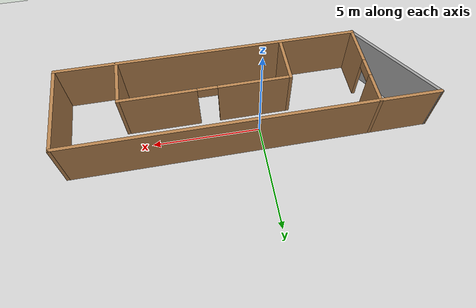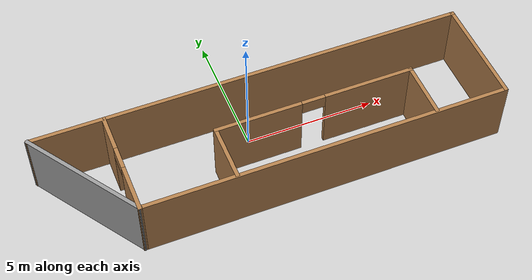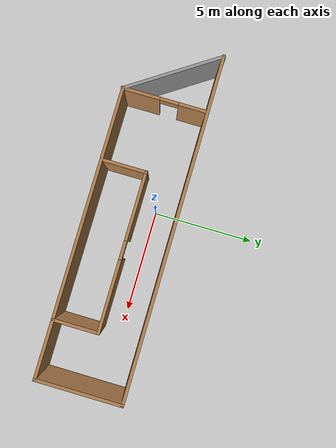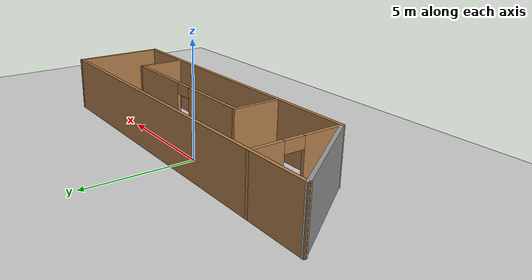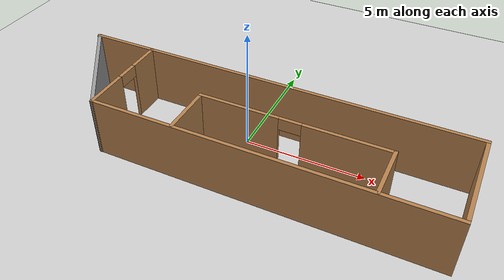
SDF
<sdf version="1.7">
 <world name="default">
  <light name="sun" type="directional">
   <pose>0 0 10 0 -0 0</pose>
   <diffuse>0.8 0.8 0.8 1</diffuse>
   <specular>0.2 0.2 0.2 1</specular>
   <attenuation>
    <range>1000</range>
    <constant>0.9</constant>
    <linear>0.01</linear>
    <quadratic>0.001</quadratic>
   </attenuation>
   <direction>-0.5 0.1 -0.9</direction>
   <spot><inner_angle>0</inner_angle><outer_angle>0</outer_angle><falloff>0</falloff></spot>
  </light>
  <model name="ground_plane">
   <static>1</static>
   <link name="link">
    <collision name="collision">
     <geometry><plane><normal>0 0 1</normal><size>100 100</size></plane></geometry>
     <surface>
      <contact><collide_bitmask>65535</collide_bitmask></contact>
      <friction><ode><mu>100</mu><mu2>50</mu2></ode></friction>
     </surface>
    </collision>
    <visual name="visual">
     <cast_shadows>0</cast_shadows>
     <geometry><plane><normal>0 0 1</normal><size>100 100</size></plane></geometry>
     <material>
      <script><uri>file://media/materials/scripts/gazebo.material</uri><name>Gazebo/Grey</name></script>
     </material>
    </visual>
   </link>
  </model>
  <gravity>0 0 -9.8</gravity>
  <magnetic_field>6e-06 2.3e-05 -4.2e-05</magnetic_field>
  <atmosphere type="adiabatic"/>
  <physics type="ode">
   <max_step_size>0.001</max_step_size>
   <real_time_factor>1</real_time_factor>
   <real_time_update_rate>1000</real_time_update_rate>
  </physics>
  <scene><ambient>0.4 0.4 0.4 1</ambient><background>0.7 0.7 0.7 1</background><shadows>1</shadows></scene>
  <spherical_coordinates>
   <surface_model>EARTH_WGS84</surface_model>
   <latitude_deg>0</latitude_deg>
   <longitude_deg>0</longitude_deg>
   <elevation>0</elevation>
   <heading_deg>0</heading_deg>
  </spherical_coordinates>
  <model name="homemini">
   <pose>0.502122 -0.752822 0 0 -0 0</pose>
   <link name="Wall_12">
    <collision name="Wall_12_Collision">
     <geometry><box><size>16.75 0.15 2.5</size></box></geometry>
     <pose>0 0 1.25 0 -0 0</pose>
    </collision>
    <visual name="Wall_12_Visual">
     <pose>0 0 1.25 0 -0 0</pose>
     <geometry><box><size>16.75 0.15 2.5</size></box></geometry>
     <material>
      <script><uri>file://media/materials/scripts/gazebo.material</uri><name>Gazebo/Wood</name></script>
      <ambient>1 1 1 1</ambient>
     </material>
     <meta><layer>0</layer></meta>
    </visual>
    <pose>0.014532 1.79826 0 0 -0 0</pose>
   </link>
   <link name="Wall_13">
    <collision name="Wall_13_Collision">
     <geometry><box><size>4.25 0.15 2.5</size></box></geometry>
     <pose>0 0 1.25 0 -0 0</pose>
    </collision>
    <visual name="Wall_13_Visual">
     <pose>0 0 1.25 0 -0 0</pose>
     <geometry><box><size>4.25 0.15 2.5</size></box></geometry>
     <material>
      <script><uri>file://media/materials/scripts/gazebo.material</uri><name>Gazebo/Wood</name></script>
      <ambient>1 1 1 1</ambient>
     </material>
     <meta><layer>0</layer></meta>
    </visual>
    <pose>8.31453 -0.251738 0 0 -0 -1.5708</pose>
   </link>
   <link name="Wall_14">
    <collision name="Wall_14_Collision">
     <geometry><box><size>14 0.15 2.5</size></box></geometry>
     <pose>0 0 1.25 0 -0 0</pose>
    </collision>
    <visual name="Wall_14_Visual">
     <pose>0 0 1.25 0 -0 0</pose>
     <geometry><box><size>14 0.15 2.5</size></box></geometry>
     <material>
      <script><uri>file://media/materials/scripts/gazebo.material</uri><name>Gazebo/Wood</name></script>
      <ambient>1 1 1 1</ambient>
     </material>
     <meta><layer>0</layer></meta>
    </visual>
    <pose>1.38953 -2.30174 0 0 -0 3.14159</pose>
   </link>
   <link name="Wall_15">
    <collision name="Wall_15_Collision">
     <geometry><box><size>5.08685 0.15 2.5</size></box></geometry>
     <pose>0 0 1.25 0 -0 0</pose>
    </collision>
    <visual name="Wall_15_Visual">
     <pose>0 0 1.25 0 -0 0</pose>
     <geometry><box><size>5.08685 0.15 2.5</size></box></geometry>
     <material>
      <script><uri>file://media/materials/scripts/gazebo.material</uri><name>Gazebo/Grey</name></script>
      <ambient>1 1 1 1</ambient>
     </material>
     <meta><layer>0</layer></meta>
    </visual>
    <pose>-6.91047 -0.251738 0 0 -0 2.16161</pose>
   </link>
   <link name="Wall_17">
    <pose>-5.53547 -0.251738 0 0 -0 1.5708</pose>
    <visual name="Wall_17_Visual_0">
     <pose>-1.18947 0 1.25 0 -0 0</pose>
     <geometry><box><size>1.87105 0.15 2.5</size></box></geometry>
     <material>
      <script><uri>file://media/materials/scripts/gazebo.material</uri><name>Gazebo/Wood</name></script>
      <ambient>1 1 1 1</ambient>
     </material>
     <meta><layer>0</layer></meta>
    </visual>
    <collision name="Wall_17_Collision_0">
     <geometry><box><size>1.87105 0.15 2.5</size></box></geometry>
     <pose>-1.18947 0 1.25 0 -0 0</pose>
    </collision>
    <visual name="Wall_17_Visual_1">
     <pose>1.38553 0 1.25 0 -0 0</pose>
     <geometry><box><size>1.47895 0.15 2.5</size></box></geometry>
     <material>
      <script><uri>file://media/materials/scripts/gazebo.material</uri><name>Gazebo/Wood</name></script>
      <ambient>1 1 1 1</ambient>
     </material>
     <meta><layer>0</layer></meta>
    </visual>
    <collision name="Wall_17_Collision_1">
     <geometry><box><size>1.47895 0.15 2.5</size></box></geometry>
     <pose>1.38553 0 1.25 0 -0 0</pose>
    </collision>
    <visual name="Wall_17_Visual_2">
     <pose>0.196054 0 2.25 0 -0 0</pose>
     <geometry><box><size>0.9 0.15 0.5</size></box></geometry>
     <material>
      <script><uri>file://media/materials/scripts/gazebo.material</uri><name>Gazebo/Wood</name></script>
      <ambient>1 1 1 1</ambient>
     </material>
     <meta><layer>0</layer></meta>
    </visual>
    <collision name="Wall_17_Collision_2">
     <geometry><box><size>0.9 0.15 0.5</size></box></geometry>
     <pose>0.196054 0 2.25 0 -0 0</pose>
    </collision>
   </link>
   <link name="Wall_19">
    <collision name="Wall_19_Collision">
     <geometry><box><size>2.25 0.15 2.5</size></box></geometry>
     <pose>0 0 1.25 0 -0 0</pose>
    </collision>
    <visual name="Wall_19_Visual">
     <pose>0 0 1.25 0 -0 0</pose>
     <geometry><box><size>2.25 0.15 2.5</size></box></geometry>
     <material>
      <script><uri>file://media/materials/scripts/gazebo.material</uri><name>Gazebo/Wood</name></script>
      <ambient>1 1 1 1</ambient>
     </material>
     <meta><layer>0</layer></meta>
    </visual>
    <pose>-2.04151 -1.20943 0 0 -0 1.5708</pose>
   </link>
   <link name="Wall_20">
    <pose>1.75849 -0.159433 0 0 -0 0</pose>
    <visual name="Wall_20_Visual_0">
     <pose>-2.19981 0 1.25 0 -0 0</pose>
     <geometry><box><size>3.35038 0.15 2.5</size></box></geometry>
     <material>
      <script><uri>file://media/materials/scripts/gazebo.material</uri><name>Gazebo/Wood</name></script>
      <ambient>1 1 1 1</ambient>
     </material>
     <meta><layer>0</layer></meta>
    </visual>
    <collision name="Wall_20_Collision_0">
     <geometry><box><size>3.35038 0.15 2.5</size></box></geometry>
     <pose>-2.19981 0 1.25 0 -0 0</pose>
    </collision>
    <visual name="Wall_20_Visual_1">
     <pose>2.12519 0 1.25 0 -0 0</pose>
     <geometry><box><size>3.49962 0.15 2.5</size></box></geometry>
     <material>
      <script><uri>file://media/materials/scripts/gazebo.material</uri><name>Gazebo/Wood</name></script>
      <ambient>1 1 1 1</ambient>
     </material>
     <meta><layer>0</layer></meta>
    </visual>
    <collision name="Wall_20_Collision_1">
     <geometry><box><size>3.49962 0.15 2.5</size></box></geometry>
     <pose>2.12519 0 1.25 0 -0 0</pose>
    </collision>
    <visual name="Wall_20_Visual_2">
     <pose>-0.074617 0 2.25 0 -0 0</pose>
     <geometry><box><size>0.9 0.15 0.5</size></box></geometry>
     <material>
      <script><uri>file://media/materials/scripts/gazebo.material</uri><name>Gazebo/Wood</name></script>
      <ambient>1 1 1 1</ambient>
     </material>
     <meta><layer>0</layer></meta>
    </visual>
    <collision name="Wall_20_Collision_2">
     <geometry><box><size>0.9 0.15 0.5</size></box></geometry>
     <pose>-0.074617 0 2.25 0 -0 0</pose>
    </collision>
   </link>
   <link name="Wall_21">
    <collision name="Wall_21_Collision">
     <geometry><box><size>2.25 0.15 2.5</size></box></geometry>
     <pose>0 0 1.25 0 -0 0</pose>
    </collision>
    <visual name="Wall_21_Visual">
     <pose>0 0 1.25 0 -0 0</pose>
     <geometry><box><size>2.25 0.15 2.5</size></box></geometry>
     <material>
      <script><uri>file://media/materials/scripts/gazebo.material</uri><name>Gazebo/Wood</name></script>
      <ambient>1 1 1 1</ambient>
     </material>
     <meta><layer>0</layer></meta>
    </visual>
    <pose>5.55849 -1.20943 0 0 -0 -1.5708</pose>
   </link>
   <static>1</static>
  </model>
 </world>
</sdf>
